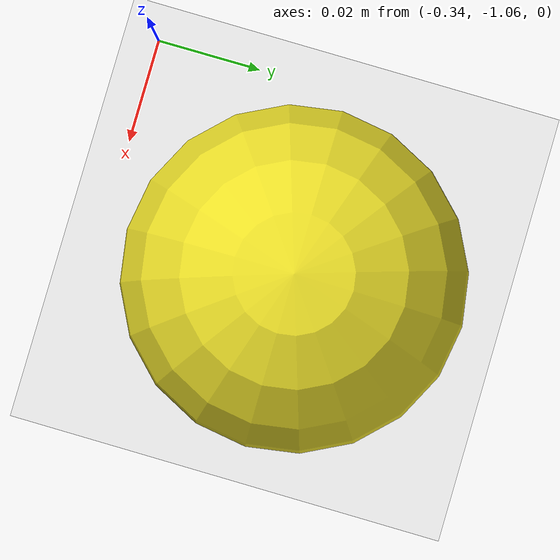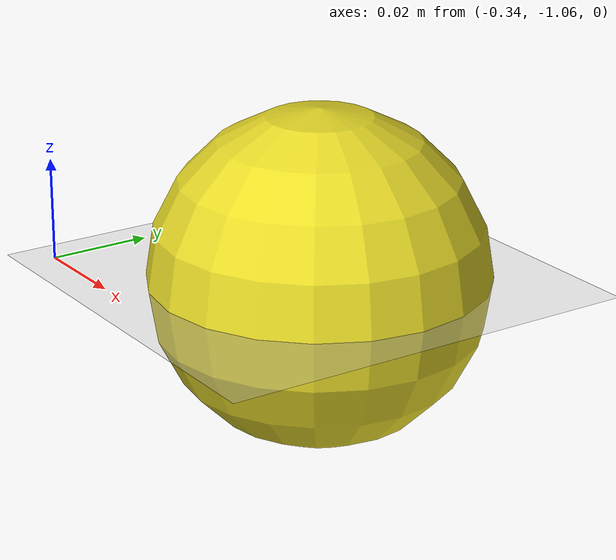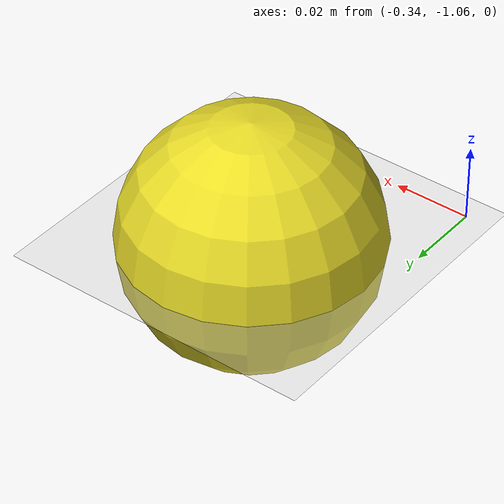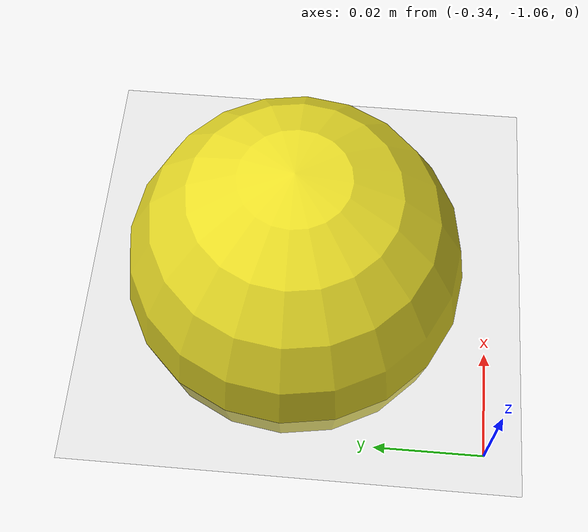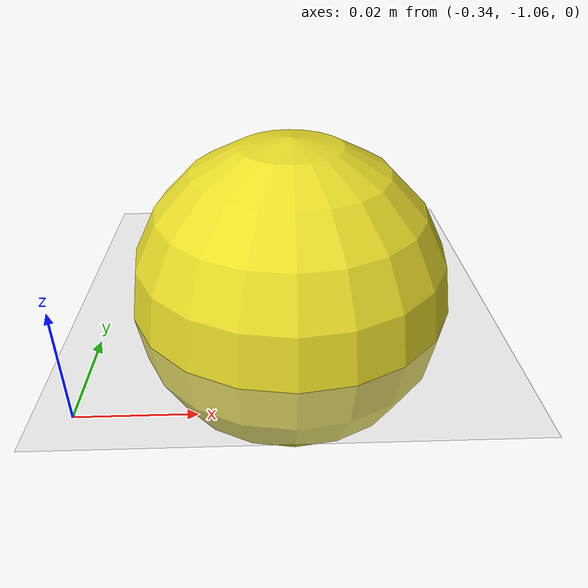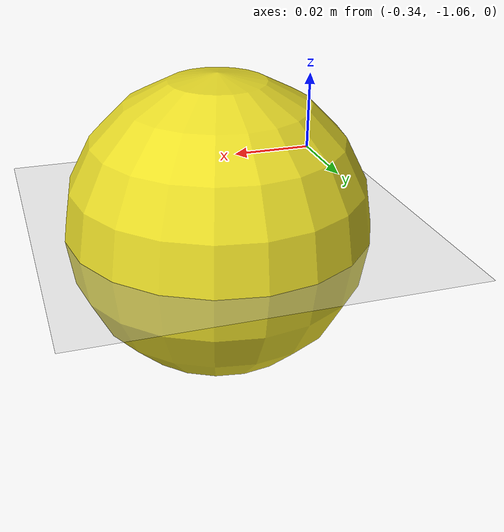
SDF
<?xml version="1.0" ?>
<sdf version="1.5">
  <world name="default">
    <!-- A global light source -->
    <include>
      <uri>model://sun</uri>
    </include>
    <!-- A ground plane -->
    <include>
      <uri>model://ground_plane</uri>
    </include>
    <model name='tennis_ball'>
      <link name='link'>
        <inertial>
          <mass>1</mass>
          <inertia>
            <ixx>0.1</ixx>
            <ixy>0</ixy>
            <ixz>0</ixz>
            <iyy>0.1</iyy>
            <iyz>0</iyz>
            <izz>0.1</izz>
          </inertia>
          <pose>0 0 0 0 -0 0</pose>
        </inertial>
        <self_collide>0</self_collide>
        <enable_wind>0</enable_wind>
        <kinematic>0</kinematic>
        <pose>0 0 0 0 -0 0</pose>
        <gravity>1</gravity>
        <visual name='visual'>
          <geometry>
            <sphere>
              <radius>0.033</radius>
            </sphere>
          </geometry>
          <material>
            <script>
              <name>Gazebo/Yellow</name>
              <uri>file://media/materials/scripts/gazebo.material</uri>
            </script>
            <shader type='pixel'>
              <normal_map>__default__</normal_map>
            </shader>
            <ambient>0.973 0.894 0.361 1</ambient>
            <diffuse>0.965 0.827 0.176 1</diffuse>
            <specular>0.973 0.933 0.42 1</specular>
            <emissive>0.965 0.827 0.176 1</emissive>
            <lighting>1</lighting>
          </material>
          <pose>0 0 0 0 -0 0</pose>
          <transparency>0</transparency>
          <cast_shadows>1</cast_shadows>
        </visual>
        <collision name='collision'>
          <laser_retro>0</laser_retro>
          <max_contacts>10</max_contacts>
          <pose>0 0 0 0 -0 0</pose>
          <geometry>
            <sphere>
              <radius>0.033</radius>
            </sphere>
          </geometry>
          <surface>
            <friction>
              <ode>
                <mu>1</mu>
                <mu2>1</mu2>
                <fdir1>0 0 0</fdir1>
                <slip1>0</slip1>
                <slip2>0</slip2>
              </ode>
              <torsional>
                <coefficient>1</coefficient>
                <patch_radius>0</patch_radius>
                <surface_radius>0</surface_radius>
                <use_patch_radius>1</use_patch_radius>
                <ode>
                  <slip>0</slip>
                </ode>
              </torsional>
            </friction>
            <bounce>
              <restitution_coefficient>0</restitution_coefficient>
              <threshold>1e+06</threshold>
            </bounce>
            <contact>
              <collide_without_contact>0</collide_without_contact>
              <collide_without_contact_bitmask>1</collide_without_contact_bitmask>
              <collide_bitmask>1</collide_bitmask>
              <ode>
                <soft_cfm>0</soft_cfm>
                <soft_erp>0.2</soft_erp>
                <kp>1e+13</kp>
                <kd>1</kd>
                <max_vel>0.01</max_vel>
                <min_depth>0</min_depth>
              </ode>
              <bullet>
                <split_impulse>1</split_impulse>
                <split_impulse_penetration_threshold>-0.01</split_impulse_penetration_threshold>
                <soft_cfm>0</soft_cfm>
                <soft_erp>0.2</soft_erp>
                <kp>1e+13</kp>
                <kd>1</kd>
              </bullet>
            </contact>
          </surface>
        </collision>
        <color rgba='0.0 1.0 0.0 0.0'/>
      </link>
      <static>0</static>
      <allow_auto_disable>1</allow_auto_disable>
      <pose>-0.303893 -1.02268 0 0 -0 0</pose>
    </model>
  </world>
</sdf>
